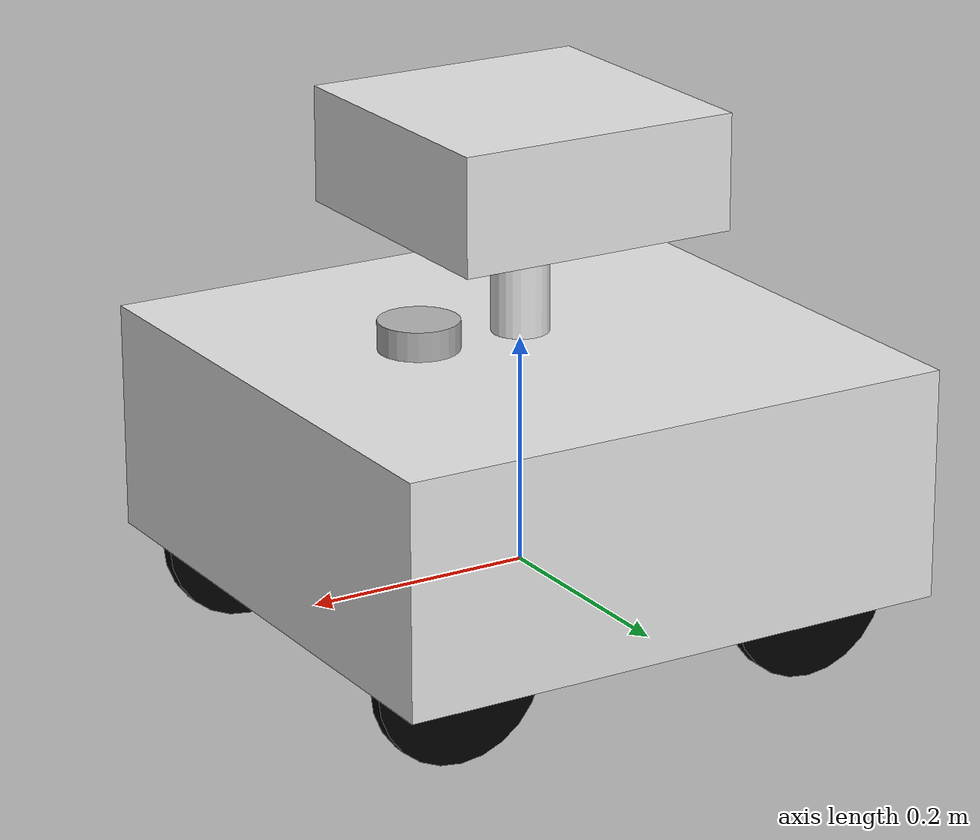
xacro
<?xml version="1.0"?>
<robot name="sentry" xmlns:xacro="http://ros.org/wiki/xacro">
    <xacro:include filename="$(find ghost_description)/urdf_robomasters/mecanum_macros.xacro"/>

    <xacro:property name="mecanum_diameter" value="0.1525"/>
    <xacro:property name="mecanum_width" value="0.0125"/>
    <xacro:property name="y_dist_to_wheel" value="0.183"/>
    <xacro:property name="x_dist_to_wheel" value="0.170"/>

    <material name="see-through-silver">
        <color rgba="0.9 0.9 0.9 1.0"/>
    </material>

    <link name="base_link">
        <visual>
            <origin xyz="0 0 0.1"/>
            <geometry>
                <box size="0.5 0.5 0.2"/>
            </geometry>
            <material name="see-through-silver"/>
        </visual>

        <collision>
            <origin xyz="0 0 0.1"/>
            <geometry>
                <box size="0.5 0.5 0.2"/>
            </geometry>
        </collision>

        <!--Inertia estimated for box of mass 10kg rotating about center with above dimensions-->
        <!-- https://en.wikipedia.org/wiki/List_of_moments_of_inertia#List_of_3D_inertia_tensors -->
        <inertial>
            <origin xyz="0 0 0.1"/>
            <mass value="20"/>
            <inertia
                ixx="0.8333" ixy="0.0" ixz="0.0"
                iyy="0.8333" iyz="0.0"
                izz="0.4833"/>
        </inertial>

        <gazebo>
            <maxVel>3.0</maxVel>
        </gazebo>
    </link>

    <link name="base_footprint">
        <inertial>
            <origin xyz="0 0 0"/>
            <mass value="0.00001"/>
            <inertia
                ixx="0.00001" ixy="0.0" ixz="0.0"
                iyy="0.00001" iyz="0.0"
                izz="0.00001"/>
        </inertial>
    </link>

    <joint name="base_footprint_joint" type="fixed">
        <parent link="base_link"/>
        <child link="base_footprint"/>
        <origin xyz="0 0 -${mecanum_diameter/2}"/>
    </joint>

    <link name="turret">
        <visual>
            <origin xyz="0 0 0"/>
            <geometry>
                <cylinder radius="0.025" length="0.1"/>
            </geometry>
            <material name="see-through-silver"/>
        </visual>

        <collision>
            <origin xyz="0 0 0"/>
            <geometry>
                <cylinder radius="0.025" length="0.1"/>
            </geometry>
        </collision>

        <visual>
            <origin xyz="0 0 0.1"/>
            <geometry>
                <box size="0.25 0.25 0.1"/>
            </geometry>
            <material name="see-through-silver"/>
        </visual>
    </link>

    <joint name="base_turret_joint" type="fixed">
        <parent link="base_link"/>
        <child link="turret"/>
        <origin xyz="0 0 0.25654"/>
    </joint>

    <!-- importing all mecanum wheels from the macro files -->
    <xacro:mecanum_macro name="front_left_wheel" wheel_radius="${mecanum_diameter/2}" wheel_width="${mecanum_width}" x_pos="${x_dist_to_wheel}" y_pos="${y_dist_to_wheel}"/>
    <xacro:mecanum_macro name="front_right_wheel" wheel_radius="${mecanum_diameter/2}" wheel_width="${mecanum_width}" x_pos="${x_dist_to_wheel}" y_pos="-${y_dist_to_wheel}"/>
    <xacro:mecanum_macro name="back_left_wheel" wheel_radius="${mecanum_diameter/2}" wheel_width="${mecanum_width}" x_pos="-${x_dist_to_wheel}" y_pos="${y_dist_to_wheel}"/>
    <xacro:mecanum_macro name="back_right_wheel" wheel_radius="${mecanum_diameter/2}" wheel_width="${mecanum_width}" x_pos="-${x_dist_to_wheel}" y_pos="-${y_dist_to_wheel}"/>

    <!-- Sensors -->
    <link name="lidar_link">
        <inertial>
            <origin xyz="0 0 0"/>
            <mass value="0.125"/>
            <inertia ixx="0.001"  ixy="0"  ixz="0" iyy="0.001" iyz="0" izz="0.001" />
        </inertial>

        <visual>
            <origin xyz="0 0 0"/>
            <geometry>
                <cylinder radius="${0.06985/2}" length="0.0254"/>
            </geometry>
        </visual>
    </link>

    <joint name="lidar_joint" type="fixed">
        <parent link="base_link"/>
        <child link="lidar_link"/>
        <origin xyz="0.098 0 0.22"/>
    </joint>
</robot>

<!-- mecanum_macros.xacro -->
<robot xmlns:xacro="http://www.ros.org/wiki/xacro">
    <!-- Wheel Macro -->
    <xacro:macro name="mecanum_macro" params="name wheel_radius wheel_width x_pos y_pos">
        <link name="${name}">
            <visual>
                <geometry>
                    <cylinder radius="${wheel_radius}" length="${wheel_width}"/>
                </geometry>
                <material name="black">
                    <color rgba="0 0 0 1.0" />
                </material>
            </visual>

            <collision>
                <origin xyz="0 0 0"/>
                <geometry>
                    <cylinder radius="${wheel_radius}" length="${wheel_width}" />
                </geometry>
            </collision>

            <!--Inertia
            estimated for solid cylinder of radius 2.5" and height 1" with mass 1 lb-->
            <!-- Just going with Maxx's math here and assuming swerve wheel ~ mecanum inertial-->
            <inertial>
                <origin xyz="0 0 0" />
                <mass value="0.4545"/>
                <inertia
                    ixx="0.000975" ixy="0.0" ixz="0.0"
                    iyy="0.000975" iyz="0.0"
                    izz="0.001902"/>
            </inertial>
        </link>

        <joint name="base_${name}_joint" type="continuous">
            <parent link="base_link" />
            <child link="${name}" />
            <origin xyz="${x_pos} ${y_pos} 0" rpy="${-pi/2} 0 0" />
            <axis xyz="0 0 1" />
        </joint>
    </xacro:macro>
</robot>
